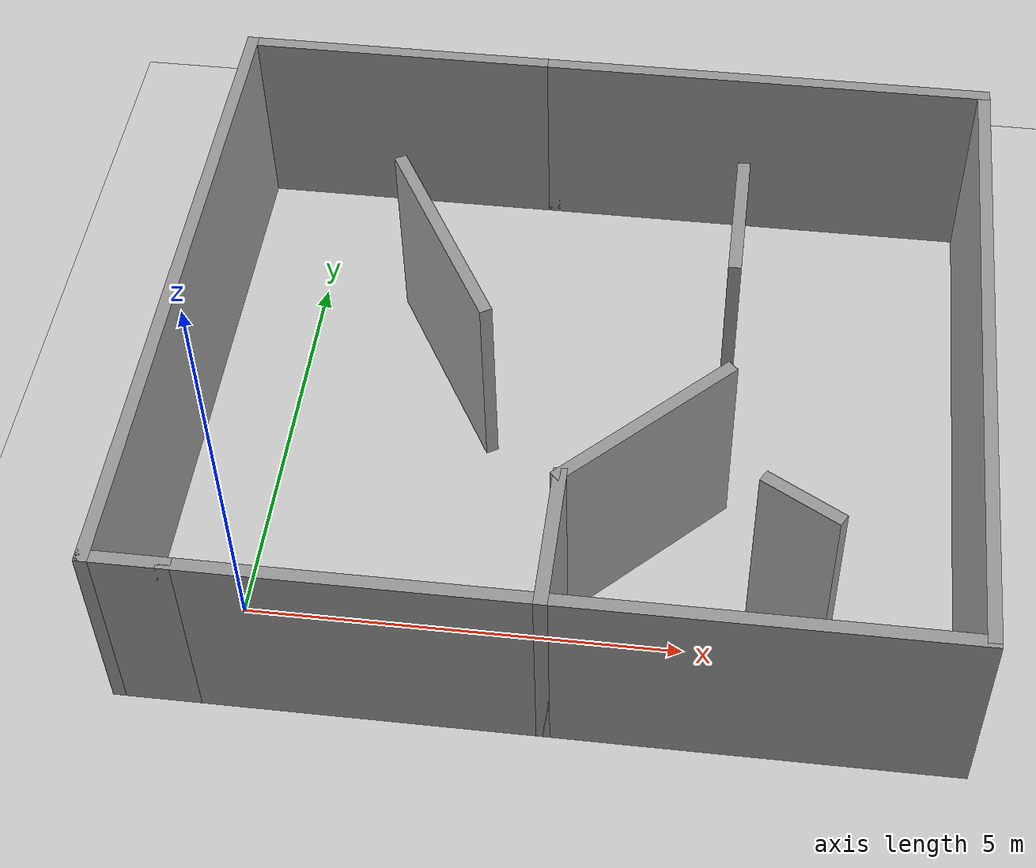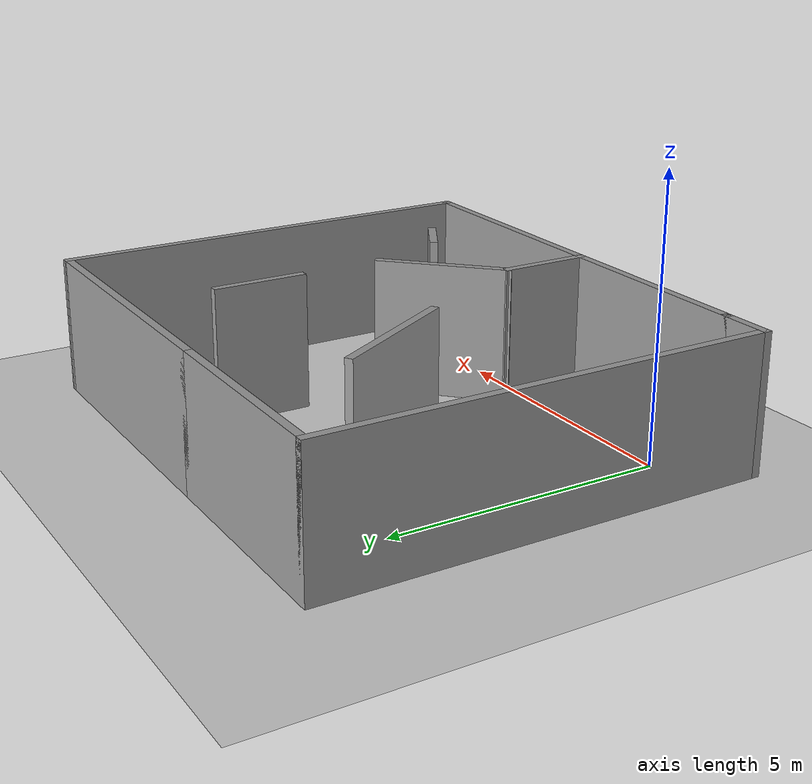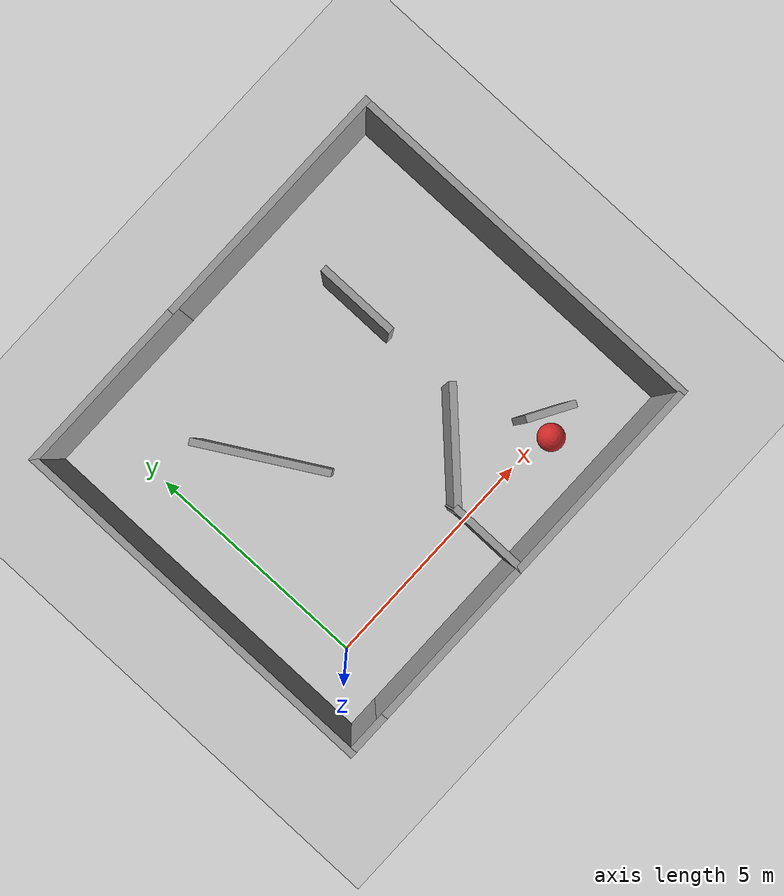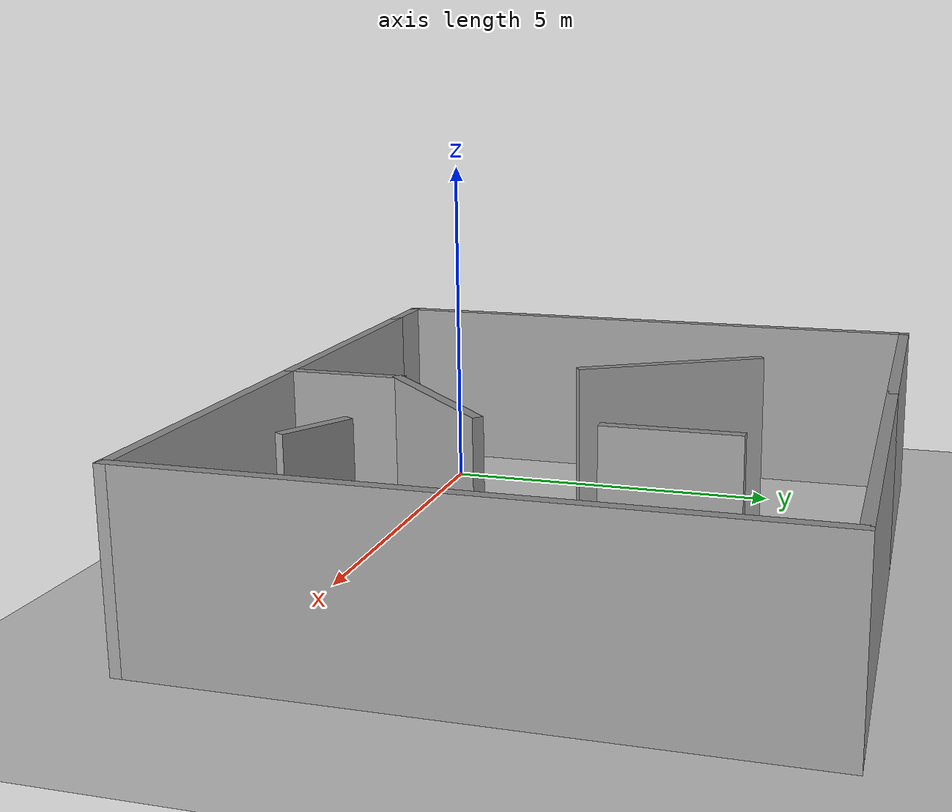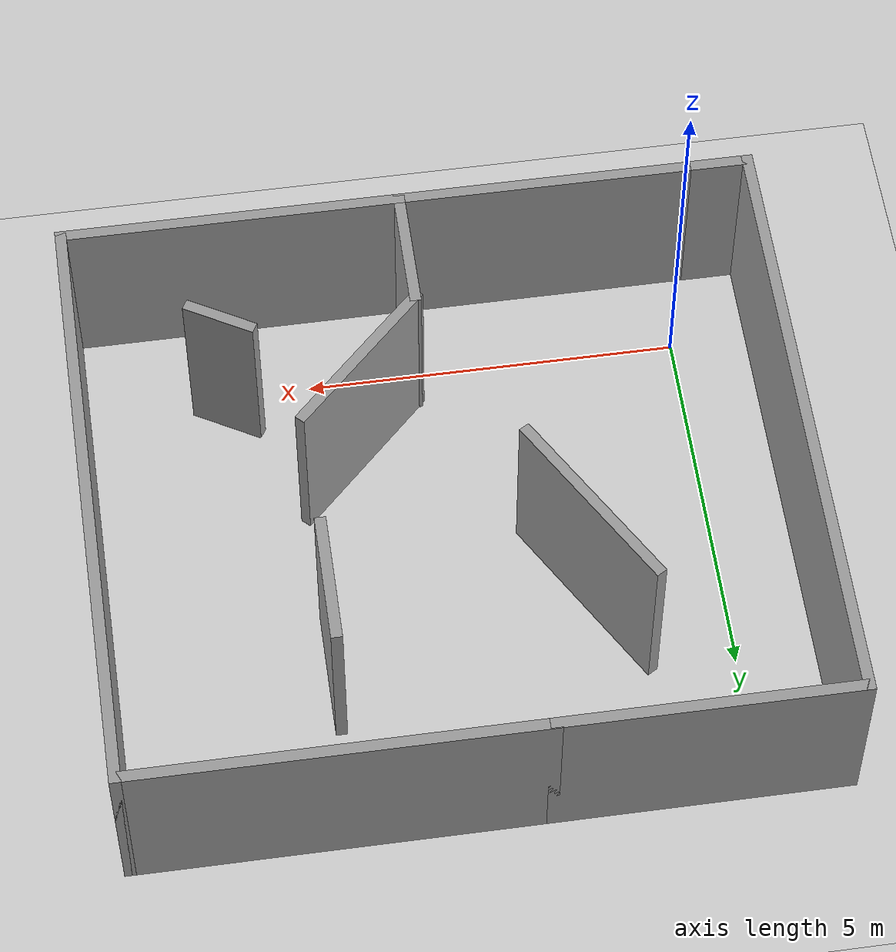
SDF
<sdf version="1.6">
 <world name="default">
  <light name="sun" type="directional">
   <pose>0 0 10 0 -0 0</pose>
   <diffuse>0.8 0.8 0.8 1</diffuse>
   <specular>0.2 0.2 0.2 1</specular>
   <attenuation>
    <range>1000</range>
    <constant>0.9</constant>
    <linear>0.01</linear>
    <quadratic>0.001</quadratic>
   </attenuation>
   <direction>-0.5 0.1 -0.9</direction>
  </light>
  <model name="ground_plane">
   <static>1</static>
   <link name="link">
    <collision name="collision">
     <geometry><plane><normal>0 0 1</normal><size>100 100</size></plane></geometry>
     <surface><friction><ode><mu>100</mu><mu2>50</mu2></ode></friction></surface>
    </collision>
    <visual name="visual">
     <cast_shadows>0</cast_shadows>
     <geometry><plane><normal>0 0 1</normal><size>100 100</size></plane></geometry>
     <material>
      <script><uri>file://media/materials/scripts/gazebo.material</uri><name>Gazebo/Grey</name></script>
     </material>
    </visual>
   </link>
  </model>
  <gravity>0 0 -9.8</gravity>
  <magnetic_field>6e-06 2.3e-05 -4.2e-05</magnetic_field>
  <atmosphere type="adiabatic"/>
  <physics name="default_physics" default="0" type="ode">
   <max_step_size>0.001</max_step_size>
   <real_time_factor>1</real_time_factor>
   <real_time_update_rate>1000</real_time_update_rate>
  </physics>
  <scene><ambient>0.4 0.4 0.4 1</ambient><background>0.7 0.7 0.7 1</background><shadows>1</shadows></scene>
  <audio><device>default</device></audio>
  <spherical_coordinates>
   <surface_model>EARTH_WGS84</surface_model>
   <latitude_deg>0</latitude_deg>
   <longitude_deg>0</longitude_deg>
   <elevation>0</elevation>
   <heading_deg>0</heading_deg>
  </spherical_coordinates>
  <model name="mazeroom">
   <pose>3.47924 2.86425 0 0 -0 0</pose>
   <link name="Wall_10">
    <collision name="Wall_10_Collision">
     <geometry><box><size>1 0.15 2.5</size></box></geometry>
     <pose>0 0 1.25 0 -0 0</pose>
    </collision>
    <visual name="Wall_10_Visual">
     <pose>0 0 1.25 0 -0 0</pose>
     <geometry><box><size>1 0.15 2.5</size></box></geometry>
     <material>
      <script><uri>file://media/materials/scripts/gazebo.material</uri><name>Gazebo/Grey</name></script>
      <ambient>1 1 1 1</ambient>
     </material>
     <meta><layer>0</layer></meta>
    </visual>
    <pose>-4.175 -4.05 0 0 -0 3.14159</pose>
   </link>
   <link name="Wall_11">
    <collision name="Wall_11_Collision">
     <geometry><box><size>8.25 0.15 2.5</size></box></geometry>
     <pose>0 0 1.25 0 -0 0</pose>
    </collision>
    <visual name="Wall_11_Visual">
     <pose>0 0 1.25 0 -0 0</pose>
     <geometry><box><size>8.25 0.15 2.5</size></box></geometry>
     <material>
      <script><uri>file://media/materials/scripts/gazebo.material</uri><name>Gazebo/Grey</name></script>
      <ambient>1 1 1 1</ambient>
     </material>
     <meta><layer>0</layer></meta>
    </visual>
    <pose>-4.6 0 0 0 -0 1.5708</pose>
   </link>
   <link name="Wall_13">
    <collision name="Wall_13_Collision">
     <geometry><box><size>1.75 0.15 2.5</size></box></geometry>
     <pose>0 0 1.25 0 -0 0</pose>
    </collision>
    <visual name="Wall_13_Visual">
     <pose>0 0 1.25 0 -0 0</pose>
     <geometry><box><size>1.75 0.15 2.5</size></box></geometry>
     <material>
      <script><uri>file://media/materials/scripts/gazebo.material</uri><name>Gazebo/Grey</name></script>
      <ambient>1 1 1 1</ambient>
     </material>
     <meta><layer>0</layer></meta>
    </visual>
    <pose>0.1 -3.25 0 0 -0 1.5708</pose>
   </link>
   <link name="Wall_15">
    <collision name="Wall_15_Collision">
     <geometry><box><size>2.5 0.15 2.5</size></box></geometry>
     <pose>0 0 1.25 0 -0 0</pose>
    </collision>
    <visual name="Wall_15_Visual">
     <pose>0 0 1.25 0 -0 0</pose>
     <geometry><box><size>2.5 0.15 2.5</size></box></geometry>
     <material>
      <script><uri>file://media/materials/scripts/gazebo.material</uri><name>Gazebo/Grey</name></script>
      <ambient>1 1 1 1</ambient>
     </material>
     <meta><layer>0</layer></meta>
    </visual>
    <pose>0.930851 -1.61915 0 0 -0 0.785398</pose>
   </link>
   <link name="Wall_17">
    <collision name="Wall_17_Collision">
     <geometry><box><size>4 0.15 2.5</size></box></geometry>
     <pose>0 0 1.25 0 -0 0</pose>
    </collision>
    <visual name="Wall_17_Visual">
     <pose>0 0 1.25 0 -0 0</pose>
     <geometry><box><size>4 0.15 2.5</size></box></geometry>
     <material>
      <script><uri>file://media/materials/scripts/gazebo.material</uri><name>Gazebo/Grey</name></script>
      <ambient>1 1 1 1</ambient>
     </material>
     <meta><layer>0</layer></meta>
    </visual>
    <pose>-2.675 4.05 0 0 -0 0</pose>
   </link>
   <link name="Wall_19">
    <collision name="Wall_19_Collision">
     <geometry><box><size>2.75 0.15 2.5</size></box></geometry>
     <pose>0 0 1.25 0 -0 0</pose>
    </collision>
    <visual name="Wall_19_Visual">
     <pose>0 0 1.25 0 -0 0</pose>
     <geometry><box><size>2.75 0.15 2.5</size></box></geometry>
     <material>
      <script><uri>file://media/materials/scripts/gazebo.material</uri><name>Gazebo/Grey</name></script>
      <ambient>1 1 1 1</ambient>
     </material>
     <meta><layer>0</layer></meta>
    </visual>
    <pose>-1.68903 0.953778 0 0 -0 -1.0472</pose>
   </link>
   <link name="Wall_21">
    <collision name="Wall_21_Collision">
     <geometry><box><size>5.5 0.15 2.5</size></box></geometry>
     <pose>0 0 1.25 0 -0 0</pose>
    </collision>
    <visual name="Wall_21_Visual">
     <pose>0 0 1.25 0 -0 0</pose>
     <geometry><box><size>5.5 0.15 2.5</size></box></geometry>
     <material>
      <script><uri>file://media/materials/scripts/gazebo.material</uri><name>Gazebo/Grey</name></script>
      <ambient>1 1 1 1</ambient>
     </material>
     <meta><layer>0</layer></meta>
    </visual>
    <pose>1.925 4.05 0 0 -0 0</pose>
   </link>
   <link name="Wall_22">
    <collision name="Wall_22_Collision">
     <geometry><box><size>8.25 0.15 2.5</size></box></geometry>
     <pose>0 0 1.25 0 -0 0</pose>
    </collision>
    <visual name="Wall_22_Visual">
     <pose>0 0 1.25 0 -0 0</pose>
     <geometry><box><size>8.25 0.15 2.5</size></box></geometry>
     <material>
      <script><uri>file://media/materials/scripts/gazebo.material</uri><name>Gazebo/Grey</name></script>
      <ambient>1 1 1 1</ambient>
     </material>
     <meta><layer>0</layer></meta>
    </visual>
    <pose>4.6 0 0 0 -0 -1.5708</pose>
   </link>
   <link name="Wall_23">
    <collision name="Wall_23_Collision">
     <geometry><box><size>4.65 0.15 2.5</size></box></geometry>
     <pose>0 0 1.25 0 -0 0</pose>
    </collision>
    <visual name="Wall_23_Visual">
     <pose>0 0 1.25 0 -0 0</pose>
     <geometry><box><size>4.65 0.15 2.5</size></box></geometry>
     <material>
      <script><uri>file://media/materials/scripts/gazebo.material</uri><name>Gazebo/Grey</name></script>
      <ambient>1 1 1 1</ambient>
     </material>
     <meta><layer>0</layer></meta>
    </visual>
    <pose>2.35 -4.05 0 0 -0 3.14159</pose>
   </link>
   <link name="Wall_25">
    <collision name="Wall_25_Collision">
     <geometry><box><size>1.75 0.15 2.5</size></box></geometry>
     <pose>0 0 1.25 0 -0 0</pose>
    </collision>
    <visual name="Wall_25_Visual">
     <pose>0 0 1.25 0 -0 0</pose>
     <geometry><box><size>1.75 0.15 2.5</size></box></geometry>
     <material>
      <script><uri>file://media/materials/scripts/gazebo.material</uri><name>Gazebo/Grey</name></script>
      <ambient>1 1 1 1</ambient>
     </material>
     <meta><layer>0</layer></meta>
    </visual>
    <pose>1.73195 1.62657 0 0 -0 -1.5708</pose>
   </link>
   <link name="Wall_28">
    <collision name="Wall_28_Collision">
     <geometry><box><size>1 0.15 2.5</size></box></geometry>
     <pose>0 0 1.25 0 -0 0</pose>
    </collision>
    <visual name="Wall_28_Visual">
     <pose>0 0 1.25 0 -0 0</pose>
     <geometry><box><size>1 0.15 2.5</size></box></geometry>
     <material>
      <script><uri>file://media/materials/scripts/gazebo.material</uri><name>Gazebo/Grey</name></script>
      <ambient>1 1 1 1</ambient>
     </material>
     <meta><layer>0</layer></meta>
    </visual>
    <pose>2.65515 -2.48144 0 0 -0 -0.523599</pose>
   </link>
   <link name="Wall_7">
    <collision name="Wall_7_Collision">
     <geometry><box><size>4 0.15 2.5</size></box></geometry>
     <pose>0 0 1.25 0 -0 0</pose>
    </collision>
    <visual name="Wall_7_Visual">
     <pose>0 0 1.25 0 -0 0</pose>
     <geometry><box><size>4 0.15 2.5</size></box></geometry>
     <material>
      <script><uri>file://media/materials/scripts/gazebo.material</uri><name>Gazebo/Grey</name></script>
      <ambient>1 1 1 1</ambient>
     </material>
     <meta><layer>0</layer></meta>
    </visual>
    <pose>-1.825 -4.05 0 0 -0 0</pose>
   </link>
   <static>1</static>
  </model>
  <model name="RoboCup SPL Ball">
   <static>0</static>
   <link name="ball">
    <inertial>
     <mass>0.0056</mass>
     <inertia>
      <ixx>2.37e-06</ixx>
      <iyy>2.37e-06</iyy>
      <izz>2.37e-06</izz>
      <ixy>0</ixy>
      <ixz>0</ixz>
      <iyz>0</iyz>
     </inertia>
    </inertial>
    <collision name="collision"><geometry><sphere><radius>0.294617</radius></sphere></geometry></collision>
    <visual name="visual">
     <geometry><sphere><radius>0.294617</radius></sphere></geometry>
     <material>
      <script><uri>file://media/materials/scripts/gazebo.material</uri><name>Gazebo/RedBright</name></script>
     </material>
    </visual>
   </link>
   <pose>5.98202 -0.135773 0.294617 0 -0 0</pose>
  </model>
 </world>
</sdf>
